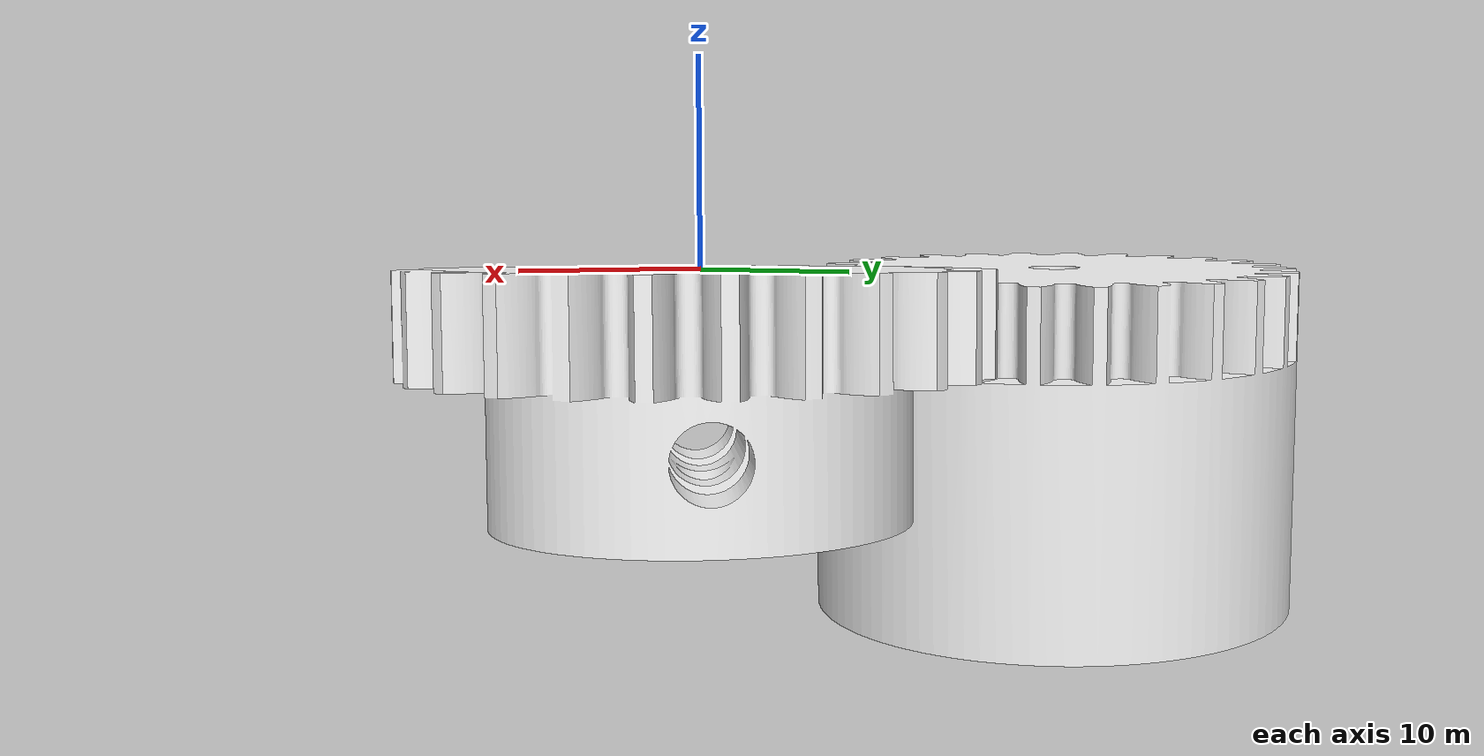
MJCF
<?xml version="1.0"?>
<mujoco model="moving">
  <default>
    <default class="visual">
      <geom group="2" type="mesh" contype="0" conaffinity="0"/>
    </default>
    <default class="collision">
      <geom group="3" type="mesh"/>
    </default>
  </default>
  <asset>
    <mesh file="FabConvert.com_gear_1.obj"/>
    <mesh file="FabConvert.com_gear_2.obj"/>
  </asset>
  <worldbody>
    <body name="FabConvert.com_gear_1" pos="0 0 0">
      <geom type="mesh" mesh="FabConvert.com_gear_1" class="visual" quat="4.371138828673793e-08 -1.0 -0.0 -0.0" pos="0.0 0.0 0.0" rgba="1.0 1.0 1.0 1.0"/>
      <geom type="mesh" mesh="FabConvert.com_gear_1" class="collision" quat="4.371138828673793e-08 -1.0 -0.0 -0.0" pos="0.0 0.0 0.0"/>
      <!-- Define the joint connecting this body to the next -->
      <joint name="gear_joint" type="hinge" pos="0 0 0" axis="0 0 1"/>
    </body>
    <body name="FabConvert.com_gear_2" pos="-26.642738342285156 -0.08491900563240051 -0.19510163366794586">
      <geom type="mesh" mesh="FabConvert.com_gear_2" class="visual" quat="0.0154664392955601215 0.9835273027420044 0.1791350096464157 -0.023555144667625427" pos="0 0 0 " rgba="1.0 1.0 1.0 1.0"/>
      <geom type="mesh" mesh="FabConvert.com_gear_2" class="collision" quat="0.0154664392955601215 0.9835273027420044 0.1791350096464157 -0.023555144667625427" pos="0 0 "/>
      <!-- This body doesn't need its own joint -->
      <joint name="gear_joint2" type="hinge" pos="0 0 0" axis="0 0 1"/>
    </body>
  </worldbody>
  <actuator>
    <!-- Define a motor actuator for the joint -->
    <motor joint="gear_joint"  ctrlrange="-1 1" gear="1"/>
  </actuator>
</mujoco>
